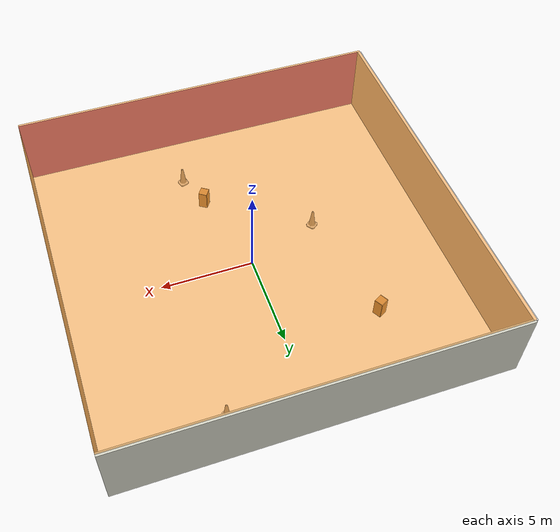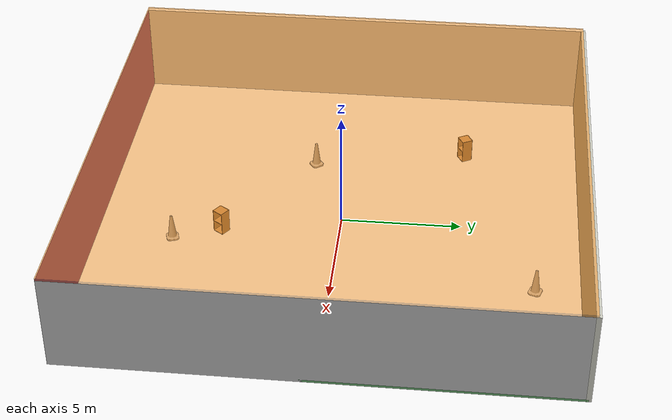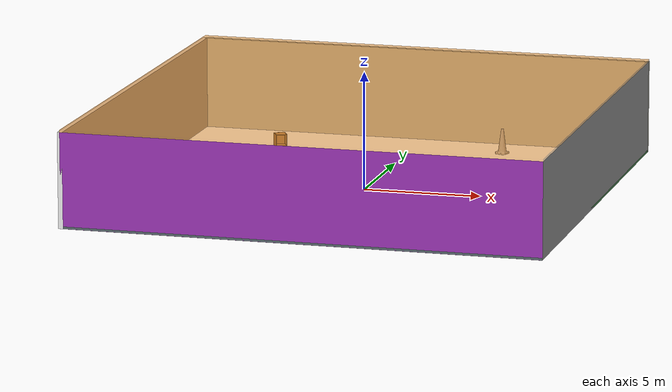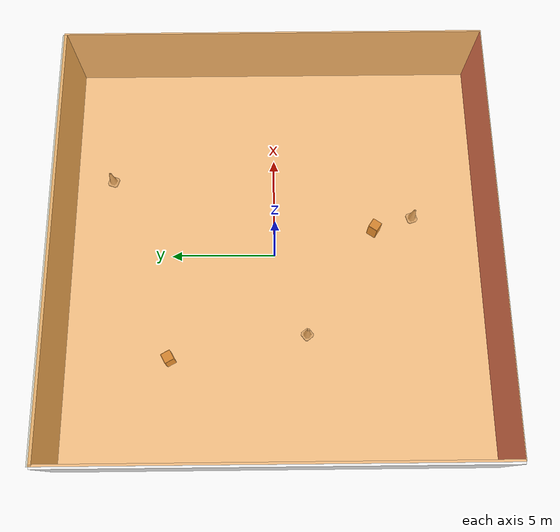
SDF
<sdf version="1.4">
 <world name="default">
  <physics type="ode">
   <max_step_size>0.001</max_step_size>
   <real_time_factor>1</real_time_factor>
   <real_time_update_rate>1000</real_time_update_rate>
   <gravity>0 0 -9.8</gravity>
  </physics>
  <scene><ambient>0.4 0.4 0.4 1</ambient><background>0.7 0.7 0.7 1</background><shadows>1</shadows></scene>
  <model name="Surrounding">
   <static>1</static>
   <link name="Ceiling">
    <collision name="Ceiling_Collision"><geometry><box><size>20 20 0.1</size></box></geometry></collision>
    <visual name="Ceiling_Visual">
     <geometry><box><size>20 20 0.1</size></box></geometry>
     <material>
      <script>
       <uri>file://media/materials/scripts/gazebo.material</uri>
       <name>Gazebo/OrangeTransparent</name>
      </script>
     </material>
    </visual>
    <pose>0 0 4.05 0 0 0</pose>
   </link>
   <link name="Wall_South">
    <collision name="Wall_South_Collision">
     <geometry><box><size>20 0 4</size></box></geometry>
     <pose>0 0 2 0 -0 0</pose>
    </collision>
    <visual name="Wall_South_Visual">
     <pose>0 0 2 0 -0 0</pose>
     <geometry><box><size>20 0 4</size></box></geometry>
     <material>
      <script><uri>file://media/materials/scripts/gazebo.material</uri><name>Gazebo/Purple</name></script>
     </material>
    </visual>
    <velocity_decay><linear>0</linear><angular>0</angular></velocity_decay>
    <pose>0 -10 0 0 -0 0</pose>
   </link>
   <link name="Wall_East">
    <collision name="Wall_21_Collision">
     <geometry><box><size>20 0 4</size></box></geometry>
     <pose>0 0 2 0 -0 0</pose>
    </collision>
    <visual name="Wall_21_Visual">
     <pose>0 0 2 0 -0 0</pose>
     <geometry><box><size>20 0 4</size></box></geometry>
     <material>
      <script><uri>file://media/materials/scripts/gazebo.material</uri><name>Gazebo/Pioneer2Body</name></script>
     </material>
    </visual>
    <velocity_decay><linear>0</linear><angular>0</angular></velocity_decay>
    <pose>10 0 0 0 -0 1.5708</pose>
   </link>
   <link name="Wall_North">
    <collision name="Wall_22_Collision">
     <geometry><box><size>20 0.2 4</size></box></geometry>
     <pose>0 0 2 0 -0 0</pose>
    </collision>
    <visual name="Wall_22_Visual">
     <pose>0 0 2 0 -0 0</pose>
     <geometry><box><size>20 0.2 4</size></box></geometry>
     <material>
      <script><uri>file://media/materials/scripts/gazebo.material</uri><name>Gazebo/PaintedWall</name></script>
     </material>
    </visual>
    <velocity_decay><linear>0</linear><angular>0</angular></velocity_decay>
    <pose>0 10 0 0 -0 0</pose>
   </link>
   <link name="Wall_West">
    <collision name="Wall_23_Collision">
     <geometry><box><size>20 0.2 4</size></box></geometry>
     <pose>0 0 2 0 -0 0</pose>
    </collision>
    <visual name="Wall_23_Visual">
     <pose>0 0 2 0 -0 0</pose>
     <geometry><box><size>20 0.2 4</size></box></geometry>
     <material>
      <script><uri>file://media/materials/scripts/gazebo.material</uri><name>Gazebo/WhiteGlow</name></script>
     </material>
    </visual>
    <velocity_decay><linear>0</linear><angular>0</angular></velocity_decay>
    <pose>-10 0 0 0 0 -1.5708</pose>
   </link>
   <link name="Ground_link">
    <collision name="collision">
     <pose>0 0 .05 0 -0 0</pose>
     <geometry><box><size>20 20 0.1</size></box></geometry>
    </collision>
    <visual name="visual">
     <pose>0 0 .05 0 -0 0</pose>
     <geometry><box><size>20 20 0.1</size></box></geometry>
     <material>
      <script><uri>file://media/materials/scripts/gazebo.material</uri><name>Gazebo/GreenTransparent</name></script>
     </material>
    </visual>
   </link>
   <static>1</static>
  </model>
  <spherical_coordinates>
   <surface_model>EARTH_WGS84</surface_model>
   <latitude_deg>0</latitude_deg>
   <longitude_deg>0</longitude_deg>
   <elevation>0</elevation>
   <heading_deg>0</heading_deg>
  </spherical_coordinates>
  <light name="lightball_0" type="diffuse">
   <diffuse>0.8 0.8 0.8 1</diffuse>
   <specular>0.2 0.2 0.2 1</specular>
   <attenuation>
    <range>100</range>
    <constant>0.7</constant>
    <linear>0.01</linear>
    <quadratic>0.001</quadratic>
   </attenuation>
   <direction>-0.5 0.1 -0.9</direction>
   <pose>8.57498327655 6.25121403259 3.30377393431 0 0 0</pose>
  </light>
  <light name="lightball_1" type="diffuse">
   <diffuse>0.8 0.8 0.8 1</diffuse>
   <specular>0.2 0.2 0.2 1</specular>
   <attenuation>
    <range>100</range>
    <constant>0.7</constant>
    <linear>0.01</linear>
    <quadratic>0.001</quadratic>
   </attenuation>
   <direction>-0.5 0.1 -0.9</direction>
   <pose>-3.78321794017 7.99299338275 1.27736052957 0 0 0</pose>
  </light>
  <light name="lightball_2" type="diffuse">
   <diffuse>0.8 0.8 0.8 1</diffuse>
   <specular>0.2 0.2 0.2 1</specular>
   <attenuation>
    <range>100</range>
    <constant>0.7</constant>
    <linear>0.01</linear>
    <quadratic>0.001</quadratic>
   </attenuation>
   <direction>-0.5 0.1 -0.9</direction>
   <pose>-4.84075075171 -0.716492491334 1.84712060474 0 0 0</pose>
  </light>
  <light name="lightball_3" type="diffuse">
   <diffuse>0.8 0.8 0.8 1</diffuse>
   <specular>0.2 0.2 0.2 1</specular>
   <attenuation>
    <range>100</range>
    <constant>0.7</constant>
    <linear>0.01</linear>
    <quadratic>0.001</quadratic>
   </attenuation>
   <direction>-0.5 0.1 -0.9</direction>
   <pose>3.40348274635 9.46474113454 1.34932479159 0 0 0</pose>
  </light>
  <light name="lightball_4" type="diffuse">
   <diffuse>0.8 0.8 0.8 1</diffuse>
   <specular>0.2 0.2 0.2 1</specular>
   <attenuation>
    <range>100</range>
    <constant>0.7</constant>
    <linear>0.01</linear>
    <quadratic>0.001</quadratic>
   </attenuation>
   <direction>-0.5 0.1 -0.9</direction>
   <pose>4.43665791778 1.63433749969 3.62106926268 0 0 0</pose>
  </light>
  <light name="lightball_5" type="diffuse">
   <diffuse>0.8 0.8 0.8 1</diffuse>
   <specular>0.2 0.2 0.2 1</specular>
   <attenuation>
    <range>100</range>
    <constant>0.7</constant>
    <linear>0.01</linear>
    <quadratic>0.001</quadratic>
   </attenuation>
   <direction>-0.5 0.1 -0.9</direction>
   <pose>9.97947700783 -1.40180353719 3.29791129666 0 0 0</pose>
  </light>
  <light name="lightball_6" type="diffuse">
   <diffuse>0.8 0.8 0.8 1</diffuse>
   <specular>0.2 0.2 0.2 1</specular>
   <attenuation>
    <range>100</range>
    <constant>0.7</constant>
    <linear>0.01</linear>
    <quadratic>0.001</quadratic>
   </attenuation>
   <direction>-0.5 0.1 -0.9</direction>
   <pose>-7.9484592232 -1.74359772224 0.753342125194 0 0 0</pose>
  </light>
  <light name="lightball_7" type="diffuse">
   <diffuse>0.8 0.8 0.8 1</diffuse>
   <specular>0.2 0.2 0.2 1</specular>
   <attenuation>
    <range>100</range>
    <constant>0.7</constant>
    <linear>0.01</linear>
    <quadratic>0.001</quadratic>
   </attenuation>
   <direction>-0.5 0.1 -0.9</direction>
   <pose>9.44692327792 8.302547425 0.857077006594 0 0 0</pose>
  </light>
  <light name="lightball_8" type="diffuse">
   <diffuse>0.8 0.8 0.8 1</diffuse>
   <specular>0.2 0.2 0.2 1</specular>
   <attenuation>
    <range>100</range>
    <constant>0.7</constant>
    <linear>0.01</linear>
    <quadratic>0.001</quadratic>
   </attenuation>
   <direction>-0.5 0.1 -0.9</direction>
   <pose>-3.21800222683 6.20110313697 1.01422087001 0 0 0</pose>
  </light>
  <light name="lightball_9" type="diffuse">
   <diffuse>0.8 0.8 0.8 1</diffuse>
   <specular>0.2 0.2 0.2 1</specular>
   <attenuation>
    <range>100</range>
    <constant>0.7</constant>
    <linear>0.01</linear>
    <quadratic>0.001</quadratic>
   </attenuation>
   <direction>-0.5 0.1 -0.9</direction>
   <pose>-2.86023422072 8.36031482353 1.54216885799 0 0 0</pose>
  </light>
  <light name="lightball_10" type="diffuse">
   <diffuse>0.8 0.8 0.8 1</diffuse>
   <specular>0.2 0.2 0.2 1</specular>
   <attenuation>
    <range>100</range>
    <constant>0.7</constant>
    <linear>0.01</linear>
    <quadratic>0.001</quadratic>
   </attenuation>
   <direction>-0.5 0.1 -0.9</direction>
   <pose>-7.51179152008 -4.6427095592 3.08215139985 0 0 0</pose>
  </light>
  <light name="lightball_11" type="diffuse">
   <diffuse>0.8 0.8 0.8 1</diffuse>
   <specular>0.2 0.2 0.2 1</specular>
   <attenuation>
    <range>100</range>
    <constant>0.7</constant>
    <linear>0.01</linear>
    <quadratic>0.001</quadratic>
   </attenuation>
   <direction>-0.5 0.1 -0.9</direction>
   <pose>-3.06888054229 7.75654697969 0.991321137067 0 0 0</pose>
  </light>
  <light name="lightball_12" type="diffuse">
   <diffuse>0.8 0.8 0.8 1</diffuse>
   <specular>0.2 0.2 0.2 1</specular>
   <attenuation>
    <range>100</range>
    <constant>0.7</constant>
    <linear>0.01</linear>
    <quadratic>0.001</quadratic>
   </attenuation>
   <direction>-0.5 0.1 -0.9</direction>
   <pose>0.583575885593 8.29308422148 2.24152642926 0 0 0</pose>
  </light>
  <include>
   <uri>model://construction_cone</uri>
   <pose>-3.95073269183 -1.50182066465 0 0 0 0.648255156842</pose>
  </include>
  <include><uri>model://cabinet</uri><pose>-5.09620045959 4.97523060747 0 0 0 2.07182683655</pose></include>
  <include>
   <uri>model://construction_cone</uri>
   <pose>1.89075450143 -6.83347152207 0 0 0 1.87496202779</pose>
  </include>
  <include><uri>model://cabinet</uri><pose>1.20520652193 -4.88200511773 0 0 0 2.54205114473</pose></include>
  <include>
   <uri>model://construction_cone</uri>
   <pose>3.97674037857 8.09238786954 0 0 0 2.81642581438</pose>
  </include>
 </world>
</sdf>

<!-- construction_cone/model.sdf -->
<sdf version="1.5">
  <model name="Construction Cone">
    <link name="link">
      <collision name="collision">
        <geometry>
          <mesh>
            <scale>10 10 10</scale>
            <uri>file://isr-testbed/construction_cone/meshes/construction_cone.dae</uri>
          </mesh>
        </geometry>
      </collision>
      <visual name="visual">
        <geometry>
          <mesh>
            <scale>10 10 10</scale>
            <uri>file://isr-testbed/construction_cone/meshes/construction_cone.dae</uri>
          </mesh>
        </geometry>
      </visual>
    </link>
  </model>
</sdf>

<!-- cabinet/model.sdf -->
<sdf version="1.5">
  <model name="cabinet">
    <static>true</static>
    <link name="cabinet_bottom_plate">
      <inertial>
        <pose>0 0 -1 0 0 0</pose>
        <inertia>
          <ixx>2.050000</ixx>
          <ixy>0</ixy>
          <ixz>0</ixz>
          <iyy>2.050000</iyy>
          <iyz>0</iyz>
          <izz>2.050000</izz>
        </inertia>
        <mass>25.000000</mass>
      </inertial>
      <collision name="cabinet_bottom_plate_geom">
        <pose>0 0 0.010000 0 0 0</pose>
        <geometry>
          <box>
            <size>0.450000 0.450000 0.020000</size>
          </box>
        </geometry>
      </collision>
      <visual name="cabinet_bottom_plate_geom_visual">
        <pose>0 0 0.010000 0 0 0</pose>
        <geometry>
          <box>
            <size>0.450000 0.450000 0.020000</size>
          </box>
        </geometry>
        <material>
          <script>
            <uri>model://media/materials/scripts/gazebo.material</uri>
            <name>Gazebo/Wood</name>
          </script>
        </material>
      </visual>
      <collision name="cabinet_bottom_plate_geom_cabinet_back_plate">
        <pose>0.235000 0 0.510000 0 0 0</pose>
        <geometry>
          <box>
            <size>0.020000 0.450000 1.020000</size>
          </box>
        </geometry>
      </collision>
      <visual name="cabinet_bottom_plate_geom_cabinet_back_plate_visual">
        <pose>0.235000 0 0.510000 0 0 0</pose>
        <geometry>
          <box>
            <size>0.020000 0.450000 1.020000</size>
          </box>
        </geometry>
        <material>
          <script>
            <uri>model://media/materials/scripts/gazebo.material</uri>
            <name>Gazebo/Wood</name>
          </script>
        </material>
      </visual>
      <collision name="cabinet_bottom_plate_geom_cabinet_left_plate">
        <pose>0 0.235000 0.510000 0 0 0</pose>
        <geometry>
          <box>
            <size>0.450000 0.020000 1.020000</size>
          </box>
        </geometry>
      </collision>
      <visual name="cabinet_bottom_plate_geom_cabinet_left_plate_visual">
        <pose>0 0.235000 0.510000 0 0 0</pose>
        <geometry>
          <box>
            <size>0.450000 0.020000 1.020000</size>
          </box>
        </geometry>
        <material>
          <script>
            <uri>model://media/materials/scripts/gazebo.material</uri>
            <name>Gazebo/Wood</name>
          </script>
        </material>
      </visual>
      <collision name="cabinet_bottom_plate_geom_cabinet_middle_plate">
        <pose>0 0 0.510000 0 0 0</pose>
        <geometry>
          <box>
            <size>0.450000 0.450000 0.020000</size>
          </box>
        </geometry>
      </collision>
      <visual name="cabinet_bottom_plate_geom_cabinet_middle_plate_visual">
        <pose>0 0 0.510000 0 0 0</pose>
        <geometry>
          <box>
            <size>0.450000 0.450000 0.020000</size>
          </box>
        </geometry>
        <material>
          <script>
            <uri>model://media/materials/scripts/gazebo.material</uri>
            <name>Gazebo/Wood</name>
          </script>
        </material>
      </visual>
      <collision name="cabinet_bottom_plate_geom_cabinet_right_plate">
        <pose>0 -0.235000 0.510000 0 0 0</pose>
        <geometry>
          <box>
            <size>0.450000 0.020000 1.020000</size>
          </box>
        </geometry>
      </collision>
      <visual name="cabinet_bottom_plate_geom_cabinet_right_plate_visual">
        <pose>0 -0.235000 0.510000 0 0 0</pose>
        <geometry>
          <box>
            <size>0.450000 0.020000 1.020000</size>
          </box>
        </geometry>
        <material>
          <script>
            <uri>model://media/materials/scripts/gazebo.material</uri>
            <name>Gazebo/Wood</name>
          </script>
        </material>
      </visual>
      <collision name="cabinet_bottom_plate_geom_cabinet_top_plate">
        <pose>0 0 1.010000 0 0 0</pose>
        <geometry>
          <box>
            <size>0.450000 0.450000 0.020000</size>
          </box>
        </geometry>
      </collision>
      <visual name="cabinet_bottom_plate_geom_cabinet_top_plate_visual">
        <pose>0 0 1.010000 0 0 0</pose>
        <geometry>
          <box>
            <size>0.450000 0.450000 0.020000</size>
          </box>
        </geometry>
        <material>
          <script>
            <uri>model://media/materials/scripts/gazebo.material</uri>
            <name>Gazebo/Wood</name>
          </script>
        </material>
      </visual>
    </link>
  </model>
</sdf>
